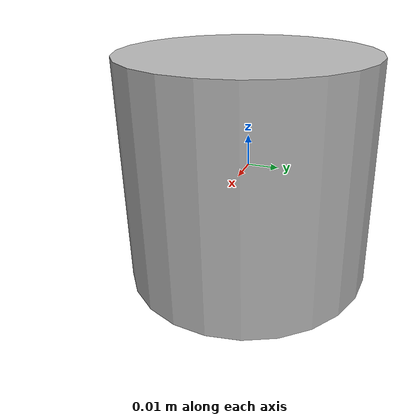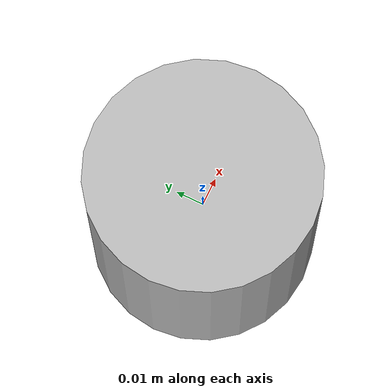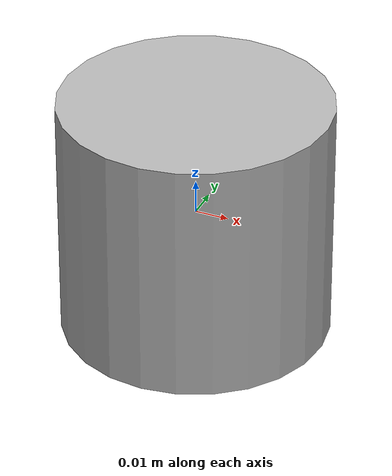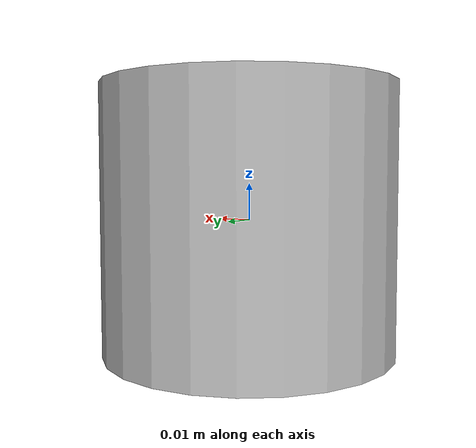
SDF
<?xml version='1.0'?>
<sdf version='1.7'>
  <model name='OS1_128'>
    <link name='os1_sensor'>
      <inertial>
        <pose>0 0 0 0 -0 0</pose>
        <mass>0.33</mass>
        <inertia>
          <ixx>0.000241148</ixx>
          <ixy>0</ixy>
          <ixz>0</ixz>
          <iyy>0.000241148</iyy>
          <iyz>0</iyz>
          <izz>0.000264</izz>
        </inertia>
      </inertial>
      <sensor name='os1_sensor-OS1-128' type='gpu_ray'>
        <pose>0 0 0 0 -0 0</pose>
        <visualize>0</visualize>
        <update_rate>10</update_rate>
        <ray>
          <scan>
            <horizontal>
              <samples>512</samples>
              <resolution>1</resolution>
              <min_angle>-3.14159</min_angle>
              <max_angle>3.14159</max_angle>
            </horizontal>
            <vertical>
              <samples>128</samples>
              <resolution>1</resolution>
              <min_angle>-0.3979</min_angle>
              <max_angle>0.3979</max_angle>
            </vertical>
          </scan>
          <range>
            <min>0.2</min>
            <max>10</max>
            <resolution>0.03</resolution>
          </range>
        </ray>
        <plugin name='gazebo_ros_laser_controller' filename='libgazebo_ros_ouster_gpu_laser.so'>
          <topicName>/os1/pointCloud</topicName>
          <frameName>os1_sensor</frameName>
          <min_range>0.2</min_range>
          <max_range>10.0</max_range>
          <gaussianNoise>0.008</gaussianNoise>
          <robotNamespace>/</robotNamespace>
        </plugin>
      </sensor>
      <self_collide>0</self_collide>
      <enable_wind>0</enable_wind>
      <kinematic>0</kinematic>
      <pose>0 0 0 0 -0 0</pose>
      <visual name='os1_sensor_fixed_joint_lump__base_visual_visual'>
        <pose>0 0 0 0 -0 1.5707</pose>
        <geometry>
          <cylinder>
            <length>0.073</length>
            <radius>0.04</radius>
          </cylinder>
        </geometry>
        <material>
          <shader type='pixel'/>
        </material>
        <transparency>0</transparency>
        <cast_shadows>1</cast_shadows>
      </visual>
      <collision name='os1_sensor_fixed_joint_lump__base_collision_collision'>
        <laser_retro>0</laser_retro>
        <max_contacts>10</max_contacts>
        <pose>0 0 0 0 -0 0</pose>
        <geometry>
          <cylinder>
            <radius>0.04</radius>
            <length>0.073</length>
          </cylinder>
        </geometry>
        <surface>
          <friction>
            <ode>
              <mu>1</mu>
              <mu2>1</mu2>
              <fdir1>0 0 0</fdir1>
              <slip1>0</slip1>
              <slip2>0</slip2>
            </ode>
            <torsional>
              <coefficient>1</coefficient>
              <patch_radius>0</patch_radius>
              <surface_radius>0</surface_radius>
              <use_patch_radius>1</use_patch_radius>
              <ode>
                <slip>0</slip>
              </ode>
            </torsional>
          </friction>
          <bounce>
            <restitution_coefficient>0</restitution_coefficient>
            <threshold>1e+06</threshold>
          </bounce>
          <contact>
            <collide_without_contact>0</collide_without_contact>
            <collide_without_contact_bitmask>1</collide_without_contact_bitmask>
            <collide_bitmask>1</collide_bitmask>
            <ode>
              <soft_cfm>0</soft_cfm>
              <soft_erp>0.2</soft_erp>
              <kp>1e+13</kp>
              <kd>1</kd>
              <max_vel>0.01</max_vel>
              <min_depth>0</min_depth>
            </ode>
            <bullet>
              <split_impulse>1</split_impulse>
              <split_impulse_penetration_threshold>-0.01</split_impulse_penetration_threshold>
              <soft_cfm>0</soft_cfm>
              <soft_erp>0.2</soft_erp>
              <kp>1e+13</kp>
              <kd>1</kd>
            </bullet>
          </contact>
        </surface>
      </collision>
    </link>
    <static>0</static>
    <allow_auto_disable>1</allow_auto_disable>
    <plugin name='imu_controller' filename='libhector_gazebo_ros_imu.so'>
      <robotNamespace>/</robotNamespace>
      <updateRate>100.0</updateRate>
      <topicName>/os1/imu</topicName>
      <accelDrift>0.005 0.005 0.005</accelDrift>
      <accelGaussianNoise>0.005 0.005 0.005</accelGaussianNoise>
      <rateDrift>0.005 0.005 0.005</rateDrift>
      <rateGaussianNoise>0.005 0.005 0.005</rateGaussianNoise>
      <headingDrift>0.005</headingDrift>
      <headingGaussianNoise>0.005</headingGaussianNoise>
      <bodyName>os1_sensor</bodyName>
      <xyzOffset>-0.006253 0.011775 -0.007645</xyzOffset>
      <rpyOffset>0 -0 0</rpyOffset>
    </plugin>
  </model>
</sdf>
